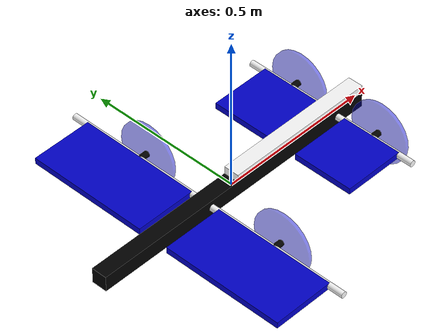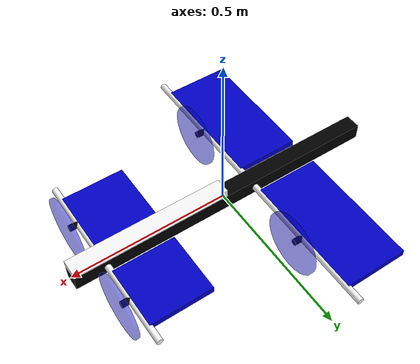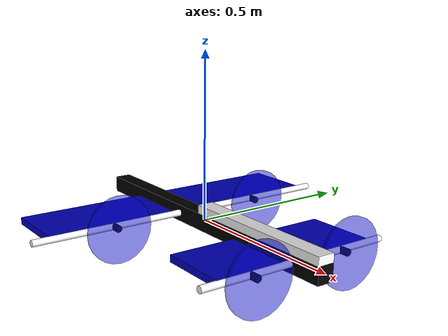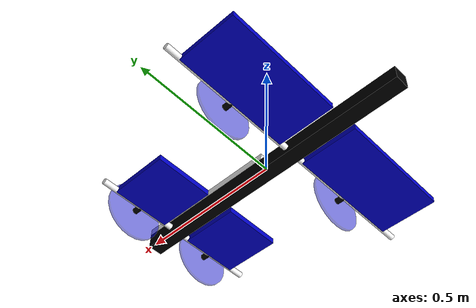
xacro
<?xml version="1.0"?>

<robot name="quad_tilt_wing" xmlns:xacro="http://ros.org/wiki/xacro">

  <xacro:property name="fuselage_length" value="1"/>
  <xacro:property name="fuselage_height" value="0.05"/>
  <xacro:property name="wing_rod_radius" value="0.01"/>
  <xacro:property name="wing_rod_length_front" value="0.3"/>
  <xacro:property name="wing_rod_length_rear" value="0.5"/>
  <xacro:property name="wing_wing_thickness" value="${wing_rod_radius*2}"/>
  <xacro:property name="wing_wing_length_front" value="${wing_rod_length_front-0.1}"/>
  <xacro:property name="wing_wing_length_rear" value="${wing_rod_length_rear-0.1}"/>
  <xacro:property name="wing_wing_width" value="0.2"/>
  <xacro:property name="prop_disk_radius" value="0.1"/>
  <xacro:property name="prop_disk_thickness" value="0.01"/>
  <xacro:property name="front_wing_joint" value="0.4"/>
  <xacro:property name="rear_wing_joint" value="-0.1"/>
  <xacro:property name="motor_radius" value="0.01"/>
  <xacro:property name="motor_length" value="0.03"/>

  <material name="blue">
    <color rgba="0 0 0.8 1"/>
  </material>
  <material name="black">
    <color rgba="0 0 0 1"/>
  </material>
  <material name="white">
    <color rgba="1 1 1 1"/>
  </material>
  <material name="blue_trans">
    <color rgba="0 0 0.8 0.5"/>
  </material>

  <link name="fuselage">
    <inertial>
      <mass value="0.1"/>
      <origin xyz="0 0 0"/>
      <inertia ixx="0.01" ixy="0.0" ixz="0.0" iyy="0.01" iyz="0.0" izz="0.01"/>
    </inertial>
    <visual>
      <geometry>
        <box size="${fuselage_length} ${fuselage_height} ${fuselage_height}"/>
      </geometry>
      <material name="black"/>
    </visual>
  </link>

  <link name="top_indicator">
    <inertial>
      <mass value="0.1"/>
      <origin xyz="0 0 0"/>
      <inertia ixx="0.01" ixy="0.0" ixz="0.0" iyy="0.01" iyz="0.0" izz="0.01"/>
    </inertial>
    <visual>
      <geometry>
        <box size="${fuselage_length/2} ${fuselage_height} ${fuselage_height/2}"/>
      </geometry>
      <material name="white"/>
    </visual>
  </link>

  <joint name="top_to_fuselage" type="fixed">
    <parent link="fuselage"/>
    <child link="top_indicator"/>
    <origin xyz="${fuselage_length/4} 0 ${fuselage_height/4*3}"/>
  </joint>

  <link name="wing_1_rod">
    <inertial>
      <mass value="0.1"/>
      <origin xyz="0 0 0"/>
      <inertia ixx="0.01" ixy="0.0" ixz="0.0" iyy="0.01" iyz="0.0" izz="0.01"/>
    </inertial>
    <visual>
      <geometry>
        <cylinder length="${wing_rod_length_front}" radius="${wing_rod_radius}"/>
      </geometry>
      <origin rpy="${pi/2} 0 0" xyz="0 ${wing_rod_length_front/2} 0"/>
      <material name="white"/>
    </visual>
  </link>

  <joint name="wing_1_joint" type="revolute">
    <axis xyz="0 1 0"/>
    <limit effort="1000.0" lower="-${pi/2+pi/4}" upper="${pi/4}" velocity="0.5"/>
    <parent link="fuselage"/>
    <child link="wing_1_rod"/>
    <origin xyz="${front_wing_joint} 0 0"/>
  </joint>

  <link name="wing_1_wing">
    <inertial>
      <mass value="0.1"/>
      <origin xyz="0 0 0"/>
      <inertia ixx="0.01" ixy="0.0" ixz="0.0" iyy="0.01" iyz="0.0" izz="0.01"/>
    </inertial>
    <visual>
      <geometry>
        <box size="${wing_wing_width} ${wing_wing_length_front} ${wing_wing_thickness}"/>
      </geometry>
      <origin rpy="0 0 0" xyz="-${wing_wing_width/2} 0 0"/>
      <material name="blue"/>
    </visual>
  </link>

  <joint name="wing_1_wing_to_rod" type="fixed">
    <parent link="wing_1_rod"/>
    <child link="wing_1_wing"/>
    <origin xyz="0 ${wing_rod_length_front/2} 0"/>
  </joint>

  <link name="wing_1_motor">
    <inertial>
      <mass value="0.1"/>
      <origin xyz="0 0 0"/>
      <inertia ixx="0.01" ixy="0.0" ixz="0.0" iyy="0.01" iyz="0.0" izz="0.01"/>
    </inertial>
    <visual>
      <geometry>
        <cylinder length="${motor_length}" radius="${motor_radius}"/>
      </geometry>
      <origin rpy="0 ${pi/2} 0" xyz="${motor_length/2} 0 0"/>
      <material name="black"/>
    </visual>
  </link>

  <joint name="wing_1_motor_to_rod" type="fixed">
    <parent link="wing_1_rod"/>
    <child link="wing_1_motor"/>
    <origin xyz="0 ${wing_rod_length_front/2} 0"/>
  </joint>

  <link name="wing_1_prop">
    <inertial>
      <mass value="0.1"/>
      <origin xyz="0 0 0"/>
      <inertia ixx="0.01" ixy="0.0" ixz="0.0" iyy="0.01" iyz="0.0" izz="0.01"/>
    </inertial>
    <visual>
      <geometry>
        <cylinder length="${prop_disk_thickness}" radius="${prop_disk_radius}"/>
      </geometry>
      <origin rpy="0 ${pi/2} 0" xyz="${prop_disk_thickness/2} 0 0"/>
      <material name="blue_trans"/>
    </visual>
  </link>

  <joint name="wing_1_prop_to_motor" type="fixed">
    <parent link="wing_1_motor"/>
    <child link="wing_1_prop"/>
    <origin xyz="${motor_length} 0 0"/>
  </joint>

  <link name="wing_2_rod">
    <inertial>
      <mass value="0.1"/>
      <origin xyz="0 0 0"/>
      <inertia ixx="0.01" ixy="0.0" ixz="0.0" iyy="0.01" iyz="0.0" izz="0.01"/>
    </inertial>
    <visual>
      <geometry>
        <cylinder length="${wing_rod_length_front}" radius="${wing_rod_radius}"/>
      </geometry>
      <origin rpy="${pi/2} 0 0" xyz="0 -${wing_rod_length_front/2} 0"/>
      <material name="white"/>
    </visual>
  </link>

  <joint name="wing_2_joint" type="revolute">
    <axis xyz="0 1 0"/>
    <limit effort="1000.0" lower="-${3/4*pi}" upper="${pi/4}" velocity="0.5"/>
    <parent link="fuselage"/>
    <child link="wing_2_rod"/>
    <origin xyz="${front_wing_joint} 0 0"/>
  </joint>

  <link name="wing_2_wing">
    <inertial>
      <mass value="0.1"/>
      <origin xyz="0 0 0"/>
      <inertia ixx="0.01" ixy="0.0" ixz="0.0" iyy="0.01" iyz="0.0" izz="0.01"/>
    </inertial>
    <visual>
      <geometry>
        <box size="${wing_wing_width} ${wing_wing_length_front} ${wing_wing_thickness}"/>
      </geometry>
      <origin rpy="0 0 0" xyz="-${wing_wing_width/2} 0 0"/>
      <material name="blue"/>
    </visual>
  </link>

  <joint name="wing_2_wing_to_rod" type="fixed">
    <parent link="wing_2_rod"/>
    <child link="wing_2_wing"/>
    <origin xyz="0 -${wing_rod_length_front/2} 0"/>
  </joint>

  <link name="wing_2_motor">
    <inertial>
      <mass value="0.1"/>
      <origin xyz="0 0 0"/>
      <inertia ixx="0.01" ixy="0.0" ixz="0.0" iyy="0.01" iyz="0.0" izz="0.01"/>
    </inertial>
    <visual>
      <geometry>
        <cylinder length="${motor_length}" radius="${motor_radius}"/>
      </geometry>
      <origin rpy="0 ${pi/2} 0" xyz="${motor_length/2} 0 0"/>
      <material name="black"/>
    </visual>
  </link>

  <joint name="wing_2_motor_to_rod" type="fixed">
    <parent link="wing_2_rod"/>
    <child link="wing_2_motor"/>
    <origin xyz="0 -${wing_rod_length_front/2} 0"/>
  </joint>

  <link name="wing_2_prop">
    <inertial>
      <mass value="0.1"/>
      <origin xyz="0 0 0"/>
      <inertia ixx="0.01" ixy="0.0" ixz="0.0" iyy="0.01" iyz="0.0" izz="0.01"/>
    </inertial>
    <visual>
      <geometry>
        <cylinder length="${prop_disk_thickness}" radius="${prop_disk_radius}"/>
      </geometry>
      <origin rpy="0 ${pi/2} 0" xyz="${prop_disk_thickness/2} 0 0"/>
      <material name="blue_trans"/>
    </visual>
  </link>

  <joint name="wing_2_prop_to_motor" type="fixed">
    <parent link="wing_2_motor"/>
    <child link="wing_2_prop"/>
    <origin xyz="${motor_length} 0 0"/>
  </joint>

  <link name="wing_3_rod">
    <inertial>
      <mass value="0.1"/>
      <origin xyz="0 0 0"/>
      <inertia ixx="0.01" ixy="0.0" ixz="0.0" iyy="0.01" iyz="0.0" izz="0.01"/>
    </inertial>
    <visual>
      <geometry>
        <cylinder length="${wing_rod_length_rear}" radius="${wing_rod_radius}"/>
      </geometry>
      <origin rpy="${pi/2} 0 0" xyz="0 ${wing_rod_length_rear/2} 0"/>
      <material name="white"/>
    </visual>
  </link>

  <joint name="wing_3_joint" type="revolute">
    <axis xyz="0 1 0"/>
    <limit effort="1000.0" lower="-${3/4*pi}" upper="${pi/4}" velocity="0.5"/>
    <parent link="fuselage"/>
    <child link="wing_3_rod"/>
    <origin xyz="${rear_wing_joint} 0 0"/>
  </joint>

  <link name="wing_3_wing">
    <inertial>
      <mass value="0.1"/>
      <origin xyz="0 0 0"/>
      <inertia ixx="0.01" ixy="0.0" ixz="0.0" iyy="0.01" iyz="0.0" izz="0.01"/>
    </inertial>
    <visual>
      <geometry>
        <box size="${wing_wing_width} ${wing_wing_length_rear} ${wing_wing_thickness}"/>
      </geometry>
      <origin rpy="0 0 0" xyz="-${wing_wing_width/2} 0 0"/>
      <material name="blue"/>
    </visual>
  </link>

  <joint name="wing_3_wing_to_rod" type="fixed">
    <parent link="wing_3_rod"/>
    <child link="wing_3_wing"/>
    <origin xyz="0 ${wing_rod_length_rear/2} 0"/>
  </joint>

  <link name="wing_3_motor">
    <inertial>
      <mass value="0.1"/>
      <origin xyz="0 0 0"/>
      <inertia ixx="0.01" ixy="0.0" ixz="0.0" iyy="0.01" iyz="0.0" izz="0.01"/>
    </inertial>
    <visual>
      <geometry>
        <cylinder length="${motor_length}" radius="${motor_radius}"/>
      </geometry>
      <origin rpy="0 ${pi/2} 0" xyz="${motor_length/2} 0 0"/>
      <material name="black"/>
    </visual>
  </link>

  <joint name="wing_3_motor_to_rod" type="fixed">
    <parent link="wing_3_rod"/>
    <child link="wing_3_motor"/>
    <origin xyz="0 ${wing_rod_length_rear/2} 0"/>
  </joint>

  <link name="wing_3_prop">
    <inertial>
      <mass value="0.1"/>
      <origin xyz="0 0 0"/>
      <inertia ixx="0.01" ixy="0.0" ixz="0.0" iyy="0.01" iyz="0.0" izz="0.01"/>
    </inertial>
    <visual>
      <geometry>
        <cylinder length="${prop_disk_thickness}" radius="${prop_disk_radius}"/>
      </geometry>
      <origin rpy="0 ${pi/2} 0" xyz="${prop_disk_thickness/2} 0 0"/>
      <material name="blue_trans"/>
    </visual>
  </link>

  <joint name="wing_3_prop_to_motor" type="fixed">
    <parent link="wing_3_motor"/>
    <child link="wing_3_prop"/>
    <origin xyz="${motor_length} 0 0"/>
  </joint>

  <link name="wing_4_rod">
    <inertial>
      <mass value="0.1"/>
      <origin xyz="0 0 0"/>
      <inertia ixx="0.01" ixy="0.0" ixz="0.0" iyy="0.01" iyz="0.0" izz="0.01"/>
    </inertial>
    <visual>
      <geometry>
        <cylinder length="${wing_rod_length_rear}" radius="${wing_rod_radius}"/>
      </geometry>
      <origin rpy="${pi/2} 0 0" xyz="0 -${wing_rod_length_rear/2} 0"/>
      <material name="white"/>
    </visual>
  </link>

  <joint name="wing_4_joint" type="revolute">
    <axis xyz="0 1 0"/>
    <limit effort="1000.0" lower="-${3/4*pi}" upper="${pi/4}" velocity="0.5"/>
    <parent link="fuselage"/>
    <child link="wing_4_rod"/>
    <origin xyz="${rear_wing_joint} 0 0"/>
  </joint>

  <link name="wing_4_wing">
    <inertial>
      <mass value="0.1"/>
      <origin xyz="0 0 0"/>
      <inertia ixx="0.01" ixy="0.0" ixz="0.0" iyy="0.01" iyz="0.0" izz="0.01"/>
    </inertial>
    <visual>
      <geometry>
        <box size="${wing_wing_width} ${wing_wing_length_rear} ${wing_wing_thickness}"/>
      </geometry>
      <origin rpy="0 0 0" xyz="-${wing_wing_width/2} 0 0"/>
      <material name="blue"/>
    </visual>
  </link>

  <joint name="wing_4_wing_to_rod" type="fixed">
    <parent link="wing_4_rod"/>
    <child link="wing_4_wing"/>
    <origin xyz="0 -${wing_rod_length_rear/2} 0"/>
  </joint>

  <link name="wing_4_motor">
    <inertial>
      <mass value="0.1"/>
      <origin xyz="0 0 0"/>
      <inertia ixx="0.01" ixy="0.0" ixz="0.0" iyy="0.01" iyz="0.0" izz="0.01"/>
    </inertial>
    <visual>
      <geometry>
        <cylinder length="${motor_length}" radius="${motor_radius}"/>
      </geometry>
      <origin rpy="0 ${pi/2} 0" xyz="${motor_length/2} 0 0"/>
      <material name="black"/>
    </visual>
  </link>

  <joint name="wing_4_motor_to_rod" type="fixed">
    <parent link="wing_4_rod"/>
    <child link="wing_4_motor"/>
    <origin xyz="0 -${wing_rod_length_rear/2} 0"/>
  </joint>

  <link name="wing_4_prop">
    <inertial>
      <mass value="0.1"/>
      <origin xyz="0 0 0"/>
      <inertia ixx="0.01" ixy="0.0" ixz="0.0" iyy="0.01" iyz="0.0" izz="0.01"/>
    </inertial>
    <visual>
      <geometry>
        <cylinder length="${prop_disk_thickness}" radius="${prop_disk_radius}"/>
      </geometry>
      <origin rpy="0 ${pi/2} 0" xyz="${prop_disk_thickness/2} 0 0"/>
      <material name="blue_trans"/>
    </visual>
  </link>

  <joint name="wing_4_prop_to_motor" type="fixed">
    <parent link="wing_4_motor"/>
    <child link="wing_4_prop"/>
    <origin xyz="${motor_length} 0 0"/>
  </joint>

</robot>
